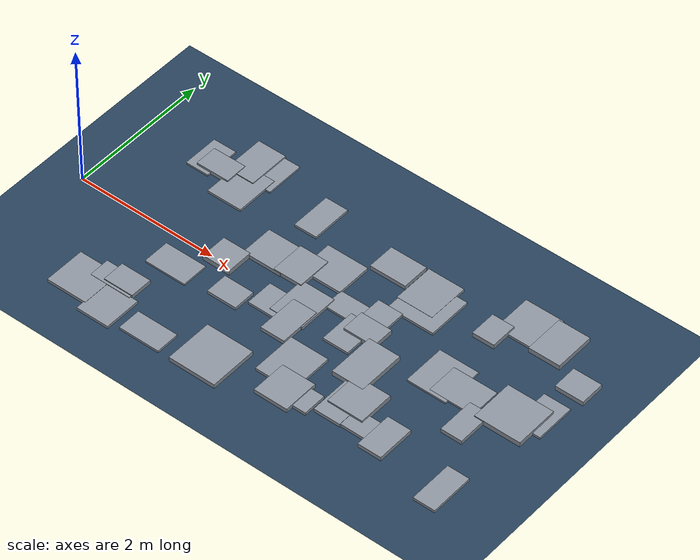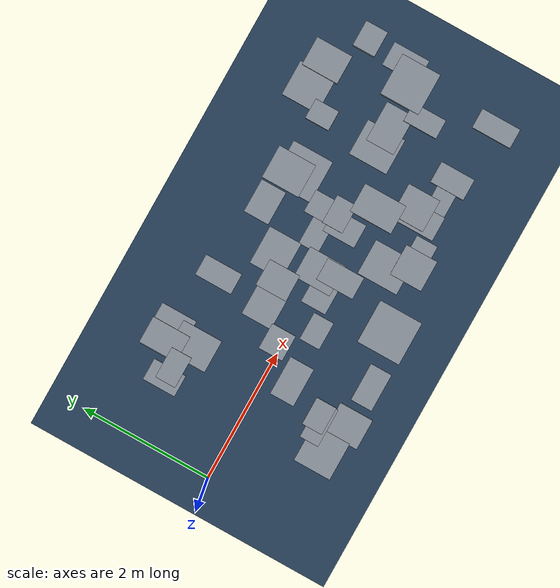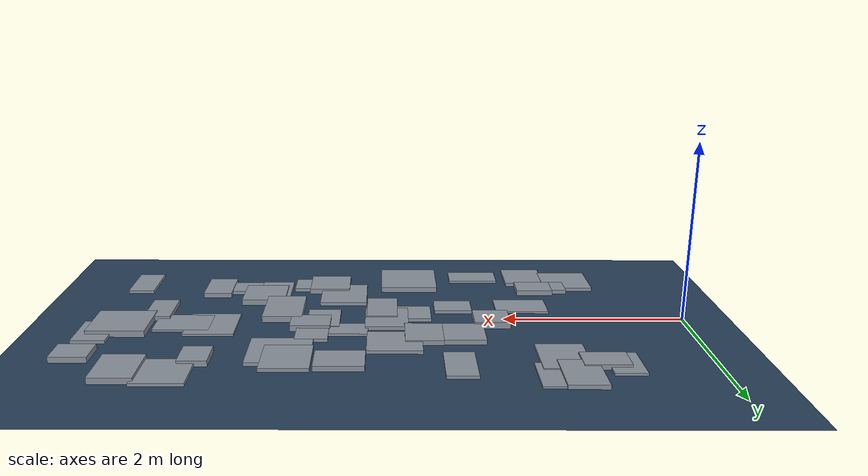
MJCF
<?xml version="1.0" encoding="utf-8"?>
<mujoco model="map_rough">
  <compiler meshdir="../model/assets" />

  <option timestep="0.002" gravity="0 0 -9.81" integrator="implicitfast" />

  <visual>
    <headlight diffuse="0.6 0.6 0.6" ambient="0.3 0.3 0.3" specular="0 0 0" />
    <rgba haze="0.15 0.25 0.35 1" />
    <global azimuth="135" elevation="-25" />
    <quality shadowsize="4096" />
  </visual>
<asset>
    <texture type="skybox" builtin="gradient" rgb1="0.3 0.5 0.7" rgb2="0 0 0" width="512" height="3072" />
    <texture type="2d" name="groundplane" builtin="checker" mark="edge" rgb1="0.2 0.3 0.4" rgb2="0.1 0.2 0.3" markrgb="0.8 0.8 0.8" width="300" height="300" />
    <material name="groundplane" texture="groundplane" texuniform="true" texrepeat="5 5" reflectance="0.2" />
<material name="terrain" rgba="0.55 0.58 0.62 1" reflectance="0.05" />
  </asset>

  <worldbody>
    <light pos="0 0 3" dir="0 0 -1" directional="true" castshadow="true" />
<geom name="floor" size="0 0 0.05" type="plane" material="groundplane" friction="0.8 0.05 0.01" />
    <geom type="box" pos="3.7737 1.1924 0.0285" size="0.2575 0.1940 0.0285" material="terrain" />
    <geom type="box" pos="2.5694 1.2645 0.0172" size="0.1611 0.2867 0.0172" material="terrain" />
    <geom type="box" pos="0.9329 1.2200 0.0129" size="0.1654 0.2528 0.0129" material="terrain" />
    <geom type="box" pos="6.4416 0.4242 0.0158" size="0.1836 0.2775 0.0158" material="terrain" />
    <geom type="box" pos="4.9470 -0.9552 0.0209" size="0.2531 0.1496 0.0209" material="terrain" />
    <geom type="box" pos="3.9990 0.0407 0.0182" size="0.1804 0.2511 0.0182" material="terrain" />
    <geom type="box" pos="5.2299 1.0921 0.0320" size="0.1532 0.1860 0.0320" material="terrain" />
    <geom type="box" pos="1.1038 -1.2160 0.0211" size="0.2886 0.2868 0.0211" material="terrain" />
    <geom type="box" pos="5.4783 1.4457 0.0167" size="0.2692 0.2808 0.0167" material="terrain" />
    <geom type="box" pos="6.4886 1.0226 0.0313" size="0.1961 0.1722 0.0313" material="terrain" />
    <geom type="box" pos="5.5367 0.1645 0.0126" size="0.3061 0.2190 0.0126" material="terrain" />
    <geom type="box" pos="3.0306 -1.2253 0.0302" size="0.3329 0.3327 0.0302" material="terrain" />
    <geom type="box" pos="2.5256 0.4819 0.0269" size="0.2736 0.2330 0.0269" material="terrain" />
    <geom type="box" pos="4.4648 -0.2351 0.0346" size="0.2213 0.3277 0.0346" material="terrain" />
    <geom type="box" pos="1.5213 1.0710 0.0167" size="0.2489 0.3069 0.0167" material="terrain" />
    <geom type="box" pos="6.2580 -1.1333 0.0185" size="0.1504 0.3036 0.0185" material="terrain" />
    <geom type="box" pos="3.8054 -0.7391 0.0189" size="0.2689 0.3121 0.0189" material="terrain" />
    <geom type="box" pos="4.3988 0.9474 0.0185" size="0.3262 0.3132 0.0185" material="terrain" />
    <geom type="box" pos="4.7348 -0.6903 0.0340" size="0.2484 0.2483 0.0340" material="terrain" />
    <geom type="box" pos="2.1440 0.0828 0.0350" size="0.1970 0.1870 0.0350" material="terrain" />
    <geom type="box" pos="1.4363 -0.9865 0.0223" size="0.2933 0.1449 0.0223" material="terrain" />
    <geom type="box" pos="3.8374 0.3464 0.0150" size="0.3340 0.1526 0.0150" material="terrain" />
    <geom type="box" pos="1.5156 1.4842 0.0122" size="0.3241 0.2726 0.0122" material="terrain" />
    <geom type="box" pos="5.8612 -0.2035 0.0274" size="0.1460 0.2599 0.0274" material="terrain" />
    <geom type="box" pos="4.1363 0.1944 0.0329" size="0.2195 0.1601 0.0329" material="terrain" />
    <geom type="box" pos="4.0962 -1.0619 0.0209" size="0.3112 0.1644 0.0209" material="terrain" />
    <geom type="box" pos="3.3009 0.0454 0.0219" size="0.2377 0.2872 0.0219" material="terrain" />
    <geom type="box" pos="1.7604 -0.3701 0.0127" size="0.2961 0.1864 0.0127" material="terrain" />
    <geom type="box" pos="4.1013 0.4128 0.0189" size="0.1757 0.2402 0.0189" material="terrain" />
    <geom type="box" pos="1.1237 1.1773 0.0277" size="0.2376 0.1582 0.0277" material="terrain" />
    <geom type="box" pos="1.4054 1.4772 0.0231" size="0.2030 0.2948 0.0231" material="terrain" />
    <geom type="box" pos="5.2169 0.1976 0.0125" size="0.2749 0.2981 0.0125" material="terrain" />
    <geom type="box" pos="3.9845 -1.0778 0.0281" size="0.2364 0.2470 0.0281" material="terrain" />
    <geom type="box" pos="4.3121 1.1101 0.0195" size="0.2544 0.2918 0.0195" material="terrain" />
    <geom type="box" pos="2.9042 0.4985 0.0285" size="0.2043 0.2406 0.0285" material="terrain" />
    <geom type="box" pos="1.6044 -1.3661 0.0193" size="0.2327 0.2582 0.0193" material="terrain" />
    <geom type="box" pos="2.5477 -0.3247 0.0209" size="0.2109 0.1569 0.0209" material="terrain" />
    <geom type="box" pos="3.2190 0.7127 0.0203" size="0.2921 0.2513 0.0203" material="terrain" />
    <geom type="box" pos="6.2048 0.2213 0.0345" size="0.3187 0.3045 0.0345" material="terrain" />
    <geom type="box" pos="3.0737 -0.1217 0.0175" size="0.2684 0.1931 0.0175" material="terrain" />
    <geom type="box" pos="3.3521 -0.2519 0.0266" size="0.1711 0.2893 0.0266" material="terrain" />
    <geom type="box" pos="4.6251 -0.7818 0.0231" size="0.1849 0.3370 0.0231" material="terrain" />
    <geom type="box" pos="1.5283 -0.9379 0.0286" size="0.2118 0.1567 0.0286" material="terrain" />
    <geom type="box" pos="2.2327 -1.3797 0.0159" size="0.2900 0.1646 0.0159" material="terrain" />
    <geom type="box" pos="5.3142 -0.9545 0.0272" size="0.1632 0.2638 0.0272" material="terrain" />
    <geom type="box" pos="5.9283 1.4009 0.0342" size="0.2199 0.2808 0.0342" material="terrain" />
  </worldbody>
</mujoco>
